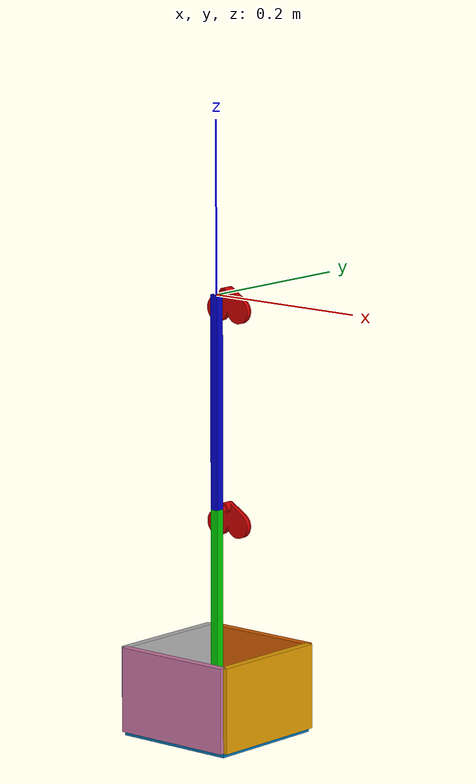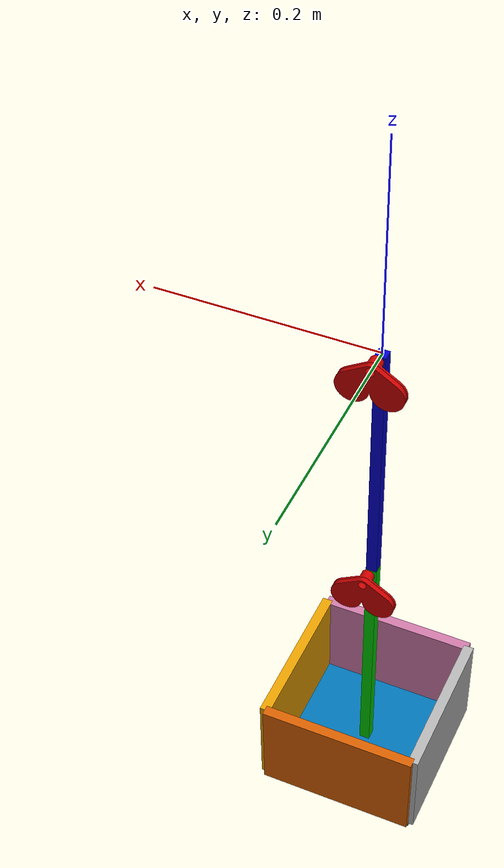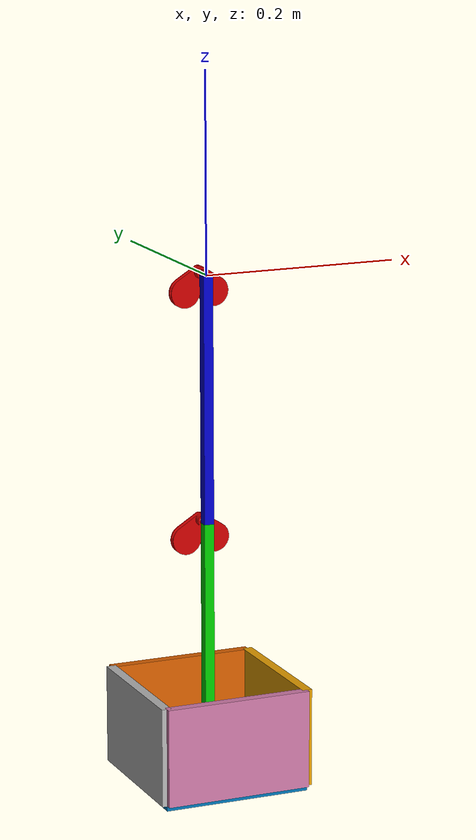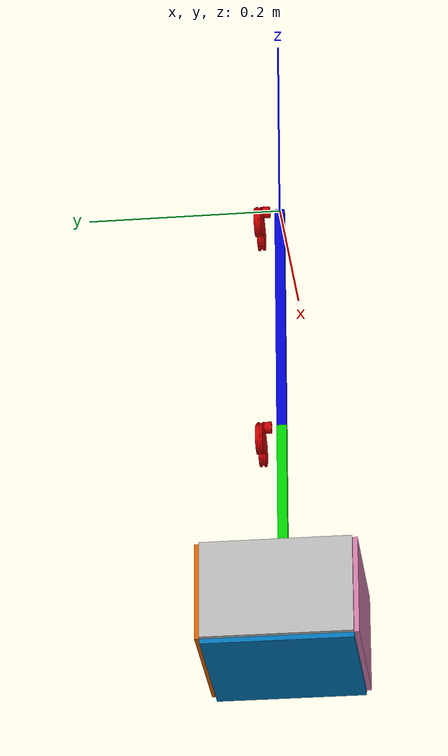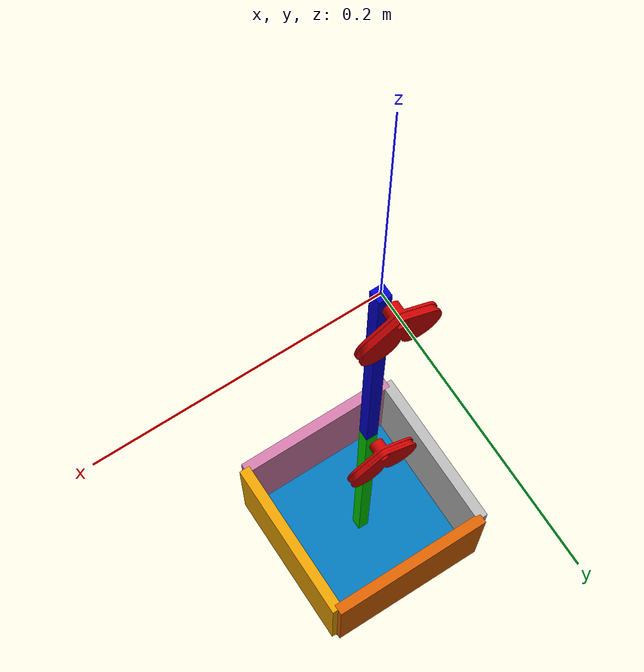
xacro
<?xml version="1.0"?>
<robot name="maccepa" xmlns:xacro="http://www.ros.org/wiki/xacro">

  <xacro:include filename="$(find maccepa_description)/urdf/materials.xacro" />
  <xacro:include filename="$(find maccepa_description)/urdf/helper_macros.urdf.xacro"/>

  <xacro:include filename="$(find maccepa_description)/urdf/link/maccepa_link.urdf.xacro"/>
  <xacro:include filename="$(find maccepa_description)/urdf/camdisk/maccepa_camdisk.urdf.xacro"/>
  <xacro:include filename="$(find maccepa_description)/urdf/basket/basket.urdf.xacro"/>

  <xacro:include filename="$(find maccepa_description)/gazebo/gazebo_baker.urdf.xacro"/>

  <xacro:property name="link_length" value="0.25"/>
  <xacro:property name="link_mass" value="1"/><!-- [kg] -->
  <xacro:property name="camdisk_length" value="0.04"/>

  <link name="world"/>

  <!-- Dummy link holding robot base coordinate frame -->
  <link name="base">
    <inertial>
      <origin xyz="0 0 0" rpy="0 0 0"/>
      <mass value="0.5"/>
      <inertia ixx="0" ixy="0" ixz="0" iyy="0" iyz="0" izz="0"/>
    </inertial>
    <visual>
      <geometry>
        <box size="0.001 0.001 0.001"/>
      </geometry>
    </visual>
  </link>
  <joint name="world_to_base" type="fixed">
    <parent link="world"/>
    <child link="base"/>
    <origin xyz="0 0 0 " rpy="0 ${pi/2} 0" />
  </joint>

  <!-- First Link -->
  <maccepa_link name="arm" length="${link_length}" mass="${link_mass}" material="blue"/>
  <gazebo_blue reference="arm"/>
  <joint name="shoulder" type="revolute">
    <parent link="base"/>
    <child link="arm" />
    <limit
        lower="-10"
        upper="10"
        effort="1000"
        velocity="1000" />
    <origin xyz="0 0 0 " rpy="0 0 0" />
    <axis xyz="0 1 0" />
  </joint>

  <!-- Second Link -->
  <maccepa_link name="forearm" length="${link_length}" mass="${link_mass}" material="green"/>
  <gazebo_red reference="forearm"/>
  <joint name="elbow" type="revolute">
    <parent link="arm"/>
    <child link="forearm" />
    <limit
      lower="-10"
      upper="10"
      effort="1000"
      velocity="1000" />
    <origin xyz="0.25 0 0 " rpy="0 0 0" />
    <axis xyz="0 1 0" />
  </joint>

  <!-- Third Link used for object catching -->
          <!--ixx="${0.5*(0.1*0.1 + 0.01*0.01)/12}" ixy="0" ixz="0"-->
          <!--iyy="${0.5*(0.1*0.1 + 0.01*0.01)/12}" iyz="0"-->

  <basket name="basket" mass="0.5" wx="0.15" wy="0.15" wz="0.01" h="0.1"/>

  <joint name="wrist" type="revolute">
    <parent link="forearm"/>
    <child link="basket" />
    <!-- Limit due to constraints -->
    <limit
        lower="${-pi + 0.001}"
        upper="${pi - 0.001}"
        effort="1000"
        velocity="1000" />
    <origin xyz="${link_length + 0.01} 0 0 " rpy="0 ${-pi/2} 0" />
    <axis xyz="0 1 0" />
    <dynamics damping="0.02" friction="0.01"/>
  </joint>

  <!-- Transmissions -->
  <!-- With use of transmission and ros_control GAZEBO publishes joint states to /joint_states topic -->
  <!-- Another way to obtain gazebo link states - use topic /gazebo/link_states -->
  <joint_transmission_macro joint_name="shoulder"/>
  <joint_transmission_macro joint_name="elbow"/>
  <joint_transmission_macro joint_name="wrist"/>

  <!-- Motors output shaft (visual only) -->
  <!-- First motor -->
  <maccepa_camdisk name="shoulder_motor" length="${camdisk_length}" material="red"/>
  <gazebo_yellow reference="shoulder_motor"/>
  <joint name="shoulder_motor_joint" type="revolute">
    <parent link="base"/>
    <child link="shoulder_motor" />
    <limit
        lower="-10"
        upper="10"
        effort="1000"
        velocity="1000" />
    <origin xyz="0 0.01 0 " rpy="0 0 0" />
    <axis xyz="0 1 0" />
  </joint>

  <!-- Second motor -->
  <maccepa_camdisk name="elbow_motor" length="${camdisk_length}" material="red"/>
  <gazebo_yellow reference="elbow_motor"/>
  <joint name="elbow_motor_joint" type="revolute">
    <parent link="arm"/>
    <child link="elbow_motor" />
    <limit
        lower="-10"
        upper="10"
        effort="1000"
        velocity="1000" />
    <origin xyz="0.25 0.01 0 " rpy="0 0 0" />
    <axis xyz="0 1 0" />
  </joint>

</robot>

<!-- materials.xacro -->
<robot xmlns:xacro="http://www.ros.org/wiki/xacro">

    <!-- Materials for sdf fallback (not used by Gazebo) -->
    <material name="blue">
        <color rgba="0.0 0.0 0.8 1.0"/>
    </material>

    <material name="green">
        <color rgba="0.0 0.8 0.0 1.0"/>
    </material>

    <material name="red">
        <color rgba="0.8 0.0 0.0 1.0"/>
    </material>

    <!-- Gazebo light emitting materials -->
    <xacro:macro name="gazebo_emissive_color" params="rgba reference">
        <gazebo reference="${reference}">
            <visual>
                <material>
                    <ambient>${rgba}</ambient>
                    <diffuse>${rgba}</diffuse>
                    <specular>0 0 0 0</specular>
                </material>
            </visual>
        </gazebo>
    </xacro:macro>

    <xacro:macro name="gazebo_green" params="reference">
        <gazebo_emissive_color reference="${reference}" rgba="0.0 1.0 0.0 0.3"/>
    </xacro:macro>

    <xacro:macro name="gazebo_blue" params="reference">
        <gazebo_emissive_color reference="${reference}" rgba="0.0 0.0 1.0 1"/>
    </xacro:macro>

    <xacro:macro name="gazebo_red" params="reference">
        <gazebo_emissive_color reference="${reference}" rgba="1.0 0.0 0.0 1"/>
    </xacro:macro>

    <xacro:macro name="gazebo_yellow" params="reference">
        <gazebo_emissive_color reference="${reference}" rgba="1.0 1.0 0.0 1"/>
    </xacro:macro>

    <xacro:macro name="contact_surface" params="reference">
        <gazebo reference="${reference}">
            <!-- for some reason none of these parameters don't apply in gazebo-->

            <!-- while parameters set as follows apply -->
            <minDepth value="0.01"/>
            <maxVel value="0.0"/>
            <mu1 value="0.8"/>
            <mu2 value="0.8"/>
        </gazebo>
    </xacro:macro>

</robot>

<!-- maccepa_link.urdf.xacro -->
<robot name="maccepa" xmlns:xacro="http://www.ros.org/wiki/xacro">

  <xacro:macro name="maccepa_link" params="name length mass material">

    <!-- slender rod along x-axis of length L and mass M -->
    <link name="${name}">
      <inertial>
        <origin xyz="${length/2} 0 0" rpy="0 0 0"/>
        <mass value="${mass}"/>
        <inertia ixx="0" ixy="0" ixz="0" iyy="${mass*length*length/12}" iyz="0" izz="${mass*length*length/12}"/>
      </inertial>

      <visual>
        <origin xyz="${length/2} 0 0" rpy="0 0 0"/>
        <geometry>
          <box size="${length} 0.01 0.01"/>
        </geometry>
        <material name="${material}"/>
      </visual>

      <!-- no collision -->

    </link>
  </xacro:macro>

</robot>

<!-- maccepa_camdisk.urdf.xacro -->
<robot name="maccepa" xmlns:xacro="http://www.ros.org/wiki/xacro">

  <xacro:macro name="maccepa_camdisk" params="name length material">

    <!-- massless (almost) visual bar -->
    <link name="${name}">

      <inertial>
        <origin xyz="${length/2} 0 0" rpy="0 0 0"/>
        <mass value="0.001"/>
        <inertia ixx="0" ixy="0" ixz="0" iyy="0" iyz="0" izz="0"/>
      </inertial>

      <visual>
        <geometry>
          <mesh filename="package://maccepa_description/stl/camdisk.stl" scale="0.001 0.001 0.001"/>
        </geometry>
        <material name="${material}"/>
      </visual>

      <!-- no collision -->

    </link>
  </xacro:macro>

</robot>

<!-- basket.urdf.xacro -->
<robot name="basket" xmlns:xacro="http://www.ros.org/wiki/xacro">

  <xacro:macro name="basket_side" params="name parent_name wx wy wz offset_x offset_y">
    <link name="${name}">
      <inertial>
        <mass value="0.001"/>
        <inertia ixx="0" ixy="0" ixz="0" iyy="0" iyz="0" izz="0"/>
      </inertial>

      <visual>
        <geometry>
          <box size="${wx} ${wy} ${wz}"/>
        </geometry>
      </visual>

      <collision>
        <geometry>
          <box size="${wx} ${wy} ${wz}"/>
        </geometry>
      </collision>
    </link>

    <joint name="${parent_name}_to_${name}" type="fixed">
      <parent link="${parent_name}"/>
      <child link="${name}" />
      <origin xyz="${offset_x} ${offset_y} ${wz/2} " rpy="0 0 0" />
    </joint>

    <contact_surface reference="${name}" />
    <gazebo_green reference="${name}"/>
  </xacro:macro>

  <xacro:macro name="basket" params="name mass wx wy wz h">
    <link name="${name}">
      <inertial>
        <mass value="${mass}"/>
        <inertia
            ixx="${mass*(wy*wy + wz*wz)/12}" ixy="0" ixz="0"
            iyy="${mass*(wx*wx + wz*wz)/12}" iyz="0"
            izz="${mass*(wx*wx + wy*wy)/12}"/>
      </inertial>

      <visual>
        <geometry>
          <box size="${wx} ${wy} ${wz}"/>
        </geometry>
      </visual>

      <collision>
        <geometry>
          <box size="${wx} ${wy} ${wz}"/>
        </geometry>
      </collision>
    </link>
    <contact_surface reference="${name}" />
    <gazebo_green reference="${name}"/>

    <basket_side name="north_side" parent_name="${name}" wx="${wx}" wy="0.01"  wz="${h}" offset_x="0"        offset_y="${wy/2}"/>
    <basket_side name="south_side" parent_name="${name}" wx="${wx}" wy="0.01"  wz="${h}" offset_x="0"        offset_y="${-wy/2}"/>
    <basket_side name="east_side"  parent_name="${name}" wx="0.01"  wy="${wy}" wz="${h}" offset_x="${-wx/2}" offset_y="0"/>
    <basket_side name="west_side"  parent_name="${name}" wx="0.01"  wy="${wy}" wz="${h}" offset_x="${wx/2}"  offset_y="0"/>

  </xacro:macro>
 </robot>
